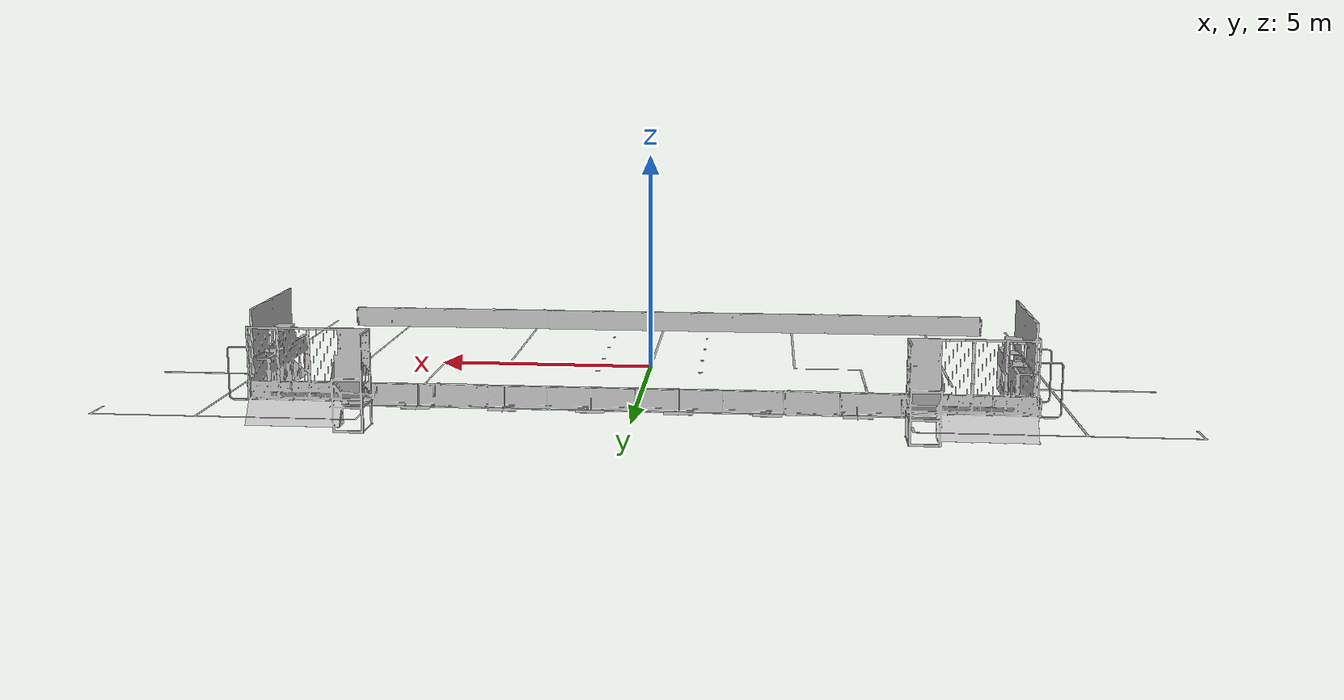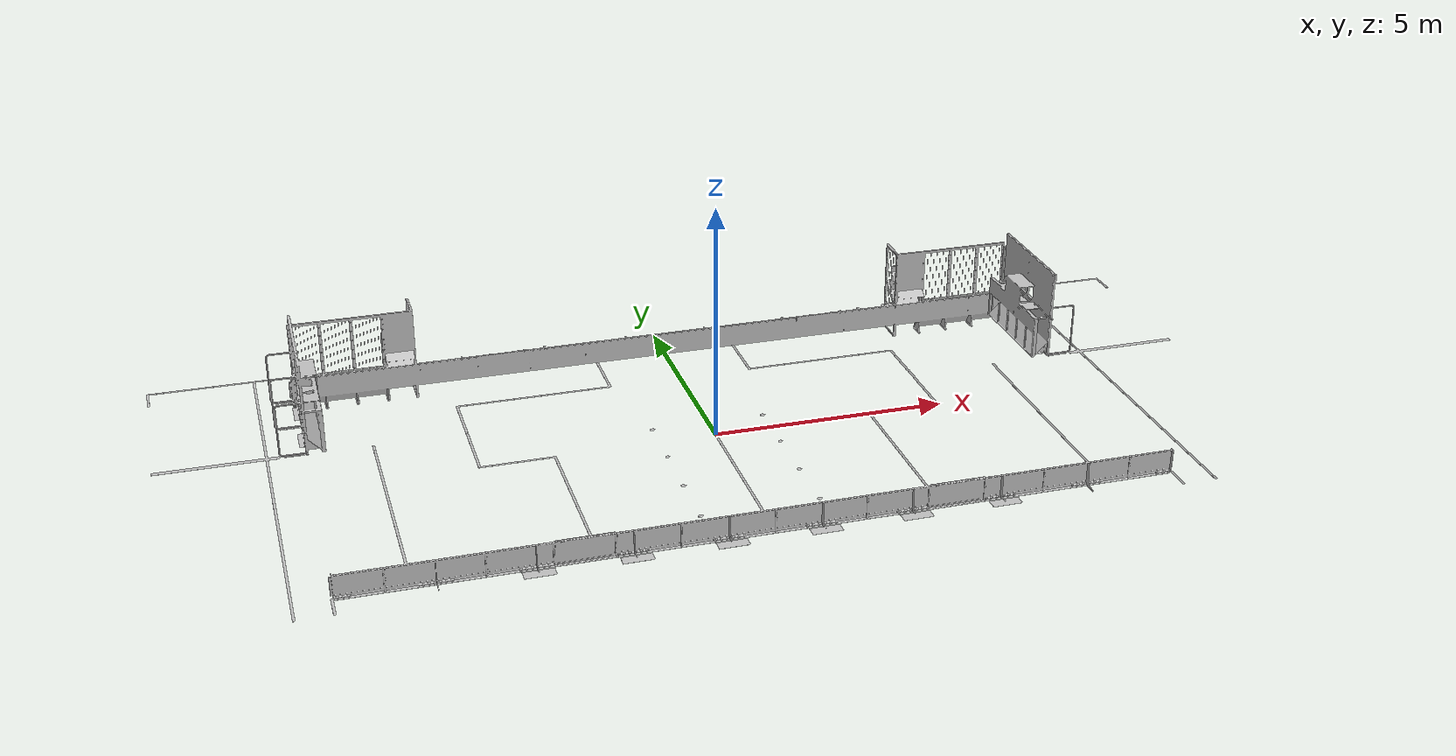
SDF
<?xml version="1.0" encoding="utf-8"?>
<sdf version="1.5">
  <model name="2023-Field">
    <pose>0 0 0.0115875 0 0 0</pose>
    <plugin name="clock" filename="libgz_clock.so">
      <topic>/gazebo/frc/time</topic>
    </plugin>
    <link name="Field">
      <gravity>1</gravity>
      <self_collide>0</self_collide>
      <pose>0.00186831350540408 1.55200620398773 0.491647907279572 1.5707963267949 0 3.14159265358979</pose>
      <must_be_base_link>1</must_be_base_link>
      <velocity_decay>
        <linear>0</linear>
        <angular>0</angular>
      </velocity_decay>
      <inertial>
        <mass>506.893211713809</mass>
        <pose>0 0 0 0 0 0</pose>
        <inertia>
          <ixx>5487.91234918723</ixx>
          <ixy>8.61655380068971</ixy>
          <ixz>66.3737160186301</ixz>
          <iyy>26648.0498330271</iyy>
          <iyz>173.218666991829</iyz>
          <izz>21303.1899117743</izz>
        </inertia>
      </inertial>
      <collision name="Field_collision">
        <pose>0.00186831350530794 -0.493235407279578 -1.55200620398776 0 0 0</pose>
        <geometry>
          <mesh>
            <scale>1 1 1</scale>
            <uri>model://2023-Field/meshes/Field_col.STL</uri>
          </mesh>
        </geometry>
        <surface>
          <contact>
            <ode />
          </contact>
          <friction>
            <ode>
              <mu>0</mu>
              <mu2>0</mu2>
            </ode>
          </friction>
        </surface>
      </collision>
      <visual name="Field_visual">
        <pose>0.00186831350530794 -0.493235407279578 -1.55200620398776 0 0 0</pose>
        <material>
          <ambient>0.752941176470588 0.752941176470588 0.752941176470588 1</ambient>
          <diffuse>0.752941176470588 0.752941176470588 0.752941176470588 1</diffuse>
        </material>
        <geometry>
          <mesh>
            <scale>1 1 1</scale>
            <uri>model://2023-Field/meshes/Field.STL</uri>
          </mesh>
        </geometry>
      </visual>
    </link>
    <joint name="Field-World" type="fixed">
      <parent>world</parent>
      <child>Field</child>
   </joint>
  </model>
</sdf>
